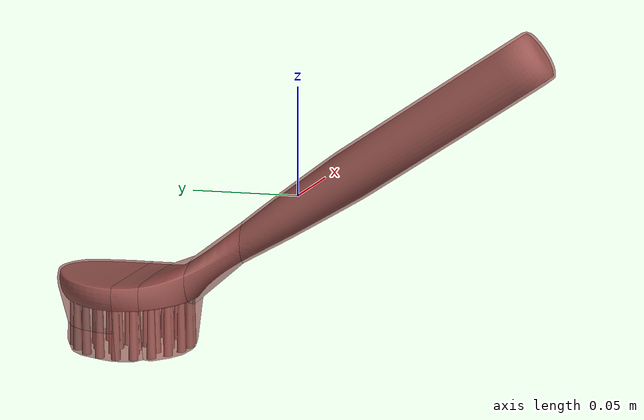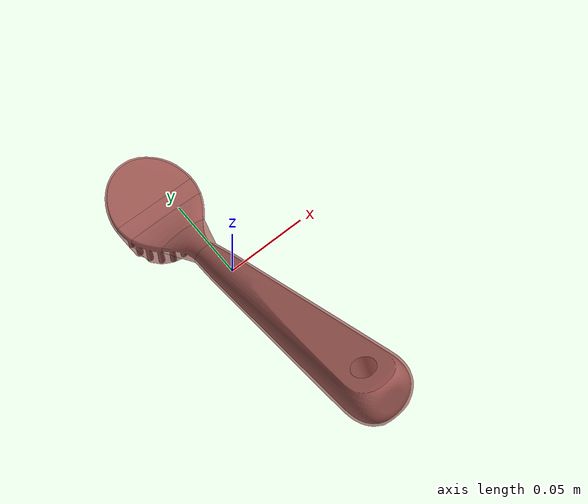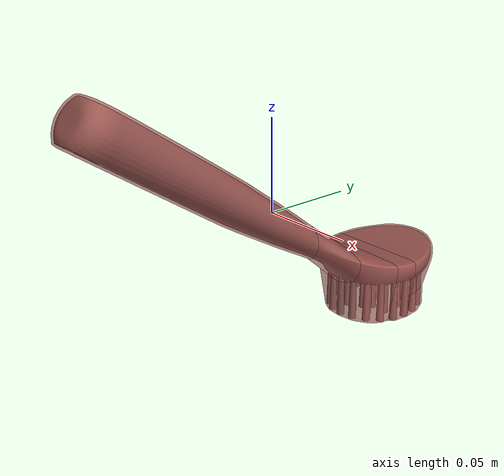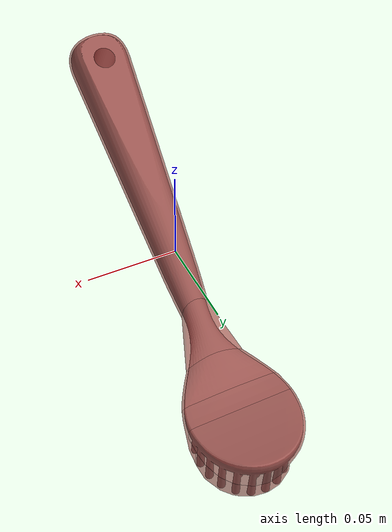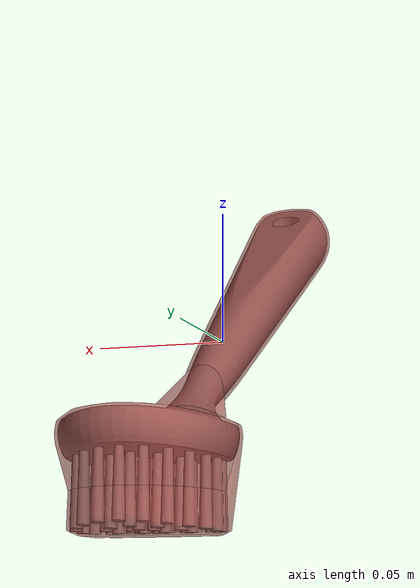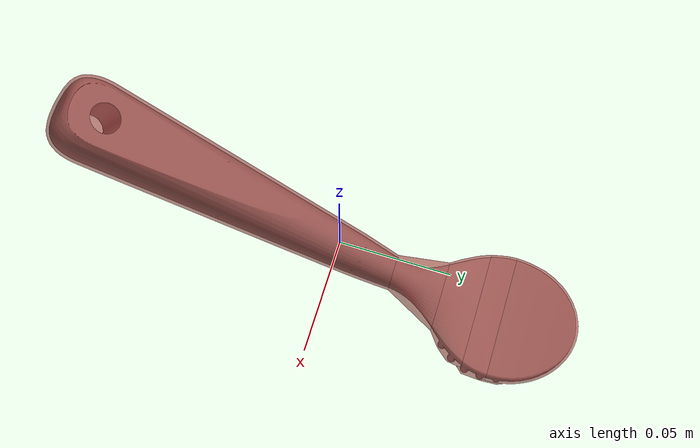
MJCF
<mujoco model="model">
  <option timestep="0.002" gravity="0.0 0.0 -9.81"/>
  <compiler angle="radian"/>
  <asset>
    <mesh file="visual/DishBrush011.obj" name="DishBrush011_vis"/>
    <texture file="visual/T_BC001.png" name="DishBrush011_material" type="2d"/>
    <material name="DishBrush011_material" rgba="1 1 1 1.0" texture="DishBrush011_material" shininess="0.4" specular="0.2"/>
    <mesh file="collision/collision_mesh_collision_0.obj" name="DishBrush011_collision_mesh_0"/>
    <mesh file="collision/collision_mesh_collision_1.obj" name="DishBrush011_collision_mesh_1"/>
    <mesh file="collision/collision_mesh_collision_2.obj" name="DishBrush011_collision_mesh_2"/>
    <mesh file="collision/collision_mesh_collision_3.obj" name="DishBrush011_collision_mesh_3"/>
    <mesh file="collision/collision_mesh_collision_4.obj" name="DishBrush011_collision_mesh_4"/>
    <mesh file="collision/collision_mesh_collision_5.obj" name="DishBrush011_collision_mesh_5"/>
  </asset>
  <default>
    <default class="visual">
      <geom conaffinity="0" contype="0" group="1" type="mesh"/>
    </default>
    <default class="collision">
      <geom group="0" rgba="0.5 0 0 0.5" density="1.0" solref="0.004 1" solimp="0.998 0.998 0.001"/>
    </default>
    <default class="spawn">
      <geom group="0" rgba="1 1 1 0.5" contype="0" conaffinity="0"/>
      <site group="0" rgba="1 1 1 0.5"/>
    </default>
    <default class="region">
      <geom group="1" conaffinity="0" contype="0" rgba="0 1 0 0" mass="0"/>
    </default>
  </default>
  <worldbody>
    <body>
      <body name="object">
        <geom mesh="DishBrush011_vis" type="mesh" solimp="0.998 0.998 0.001" solref="0.001 1" friction="0.95 0.3 0.1" class="visual" material="DishBrush011_material"/>
        <geom class="region" name="reg_bbox" type="box" pos="9.100000000015346e-07 0.00014795499999999823 -0.00022940999999999934" size="0.030600389999999998 0.11625327499999999 0.07764955"/>
        <geom mesh="DishBrush011_collision_mesh_0" type="mesh" class="collision"/>
        <geom mesh="DishBrush011_collision_mesh_1" type="mesh" class="collision"/>
        <geom mesh="DishBrush011_collision_mesh_2" type="mesh" class="collision"/>
        <geom mesh="DishBrush011_collision_mesh_3" type="mesh" class="collision"/>
        <geom mesh="DishBrush011_collision_mesh_4" type="mesh" class="collision"/>
        <geom mesh="DishBrush011_collision_mesh_5" type="mesh" class="collision"/>
      </body>
    </body>
  </worldbody>
  <actuator/>
</mujoco>
